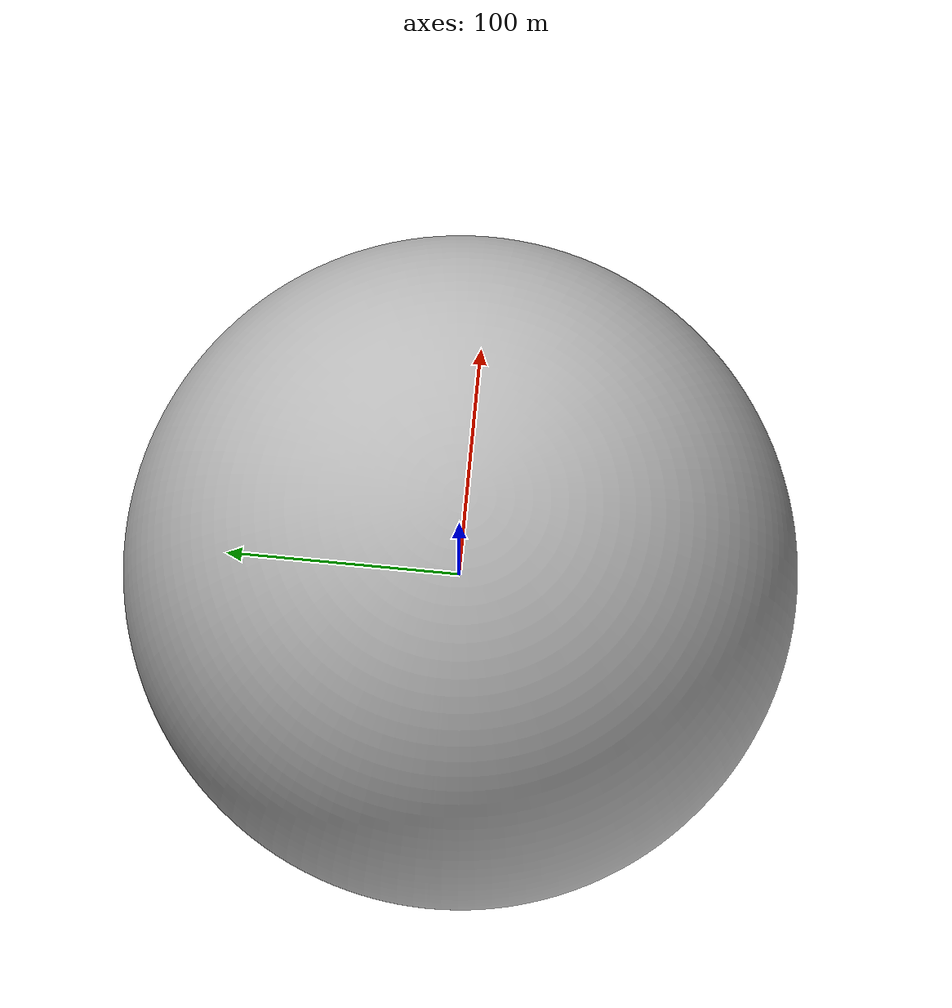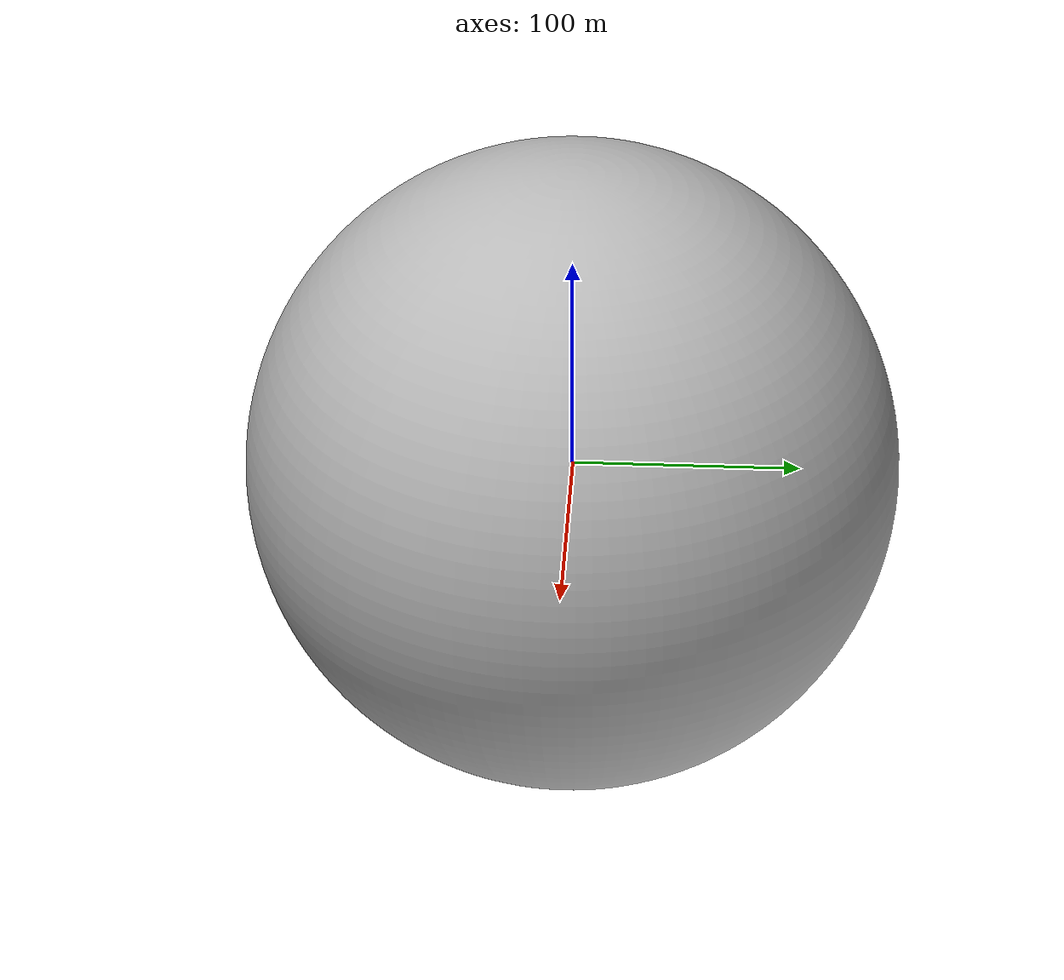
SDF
<?xml version="1.0" ?>
<sdf version="1.5">
  <model name="earth">
    <link name="link">

      <visual name="visual">
        <geometry>
          <mesh>
            <uri>model://earth/meshes/earth.dae</uri>
            <scale>450 450 450</scale>
          </mesh>
        </geometry>
       </visual>

    </link>
  </model>
</sdf>
